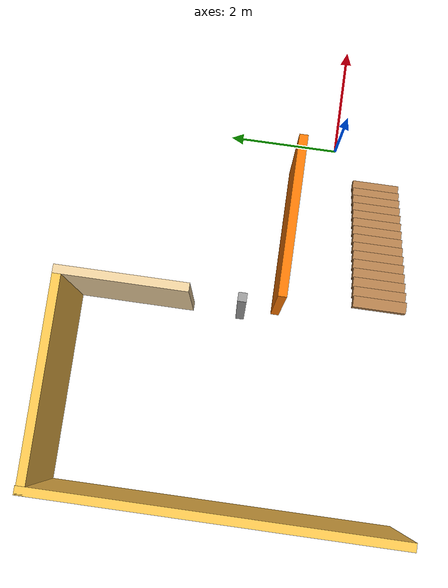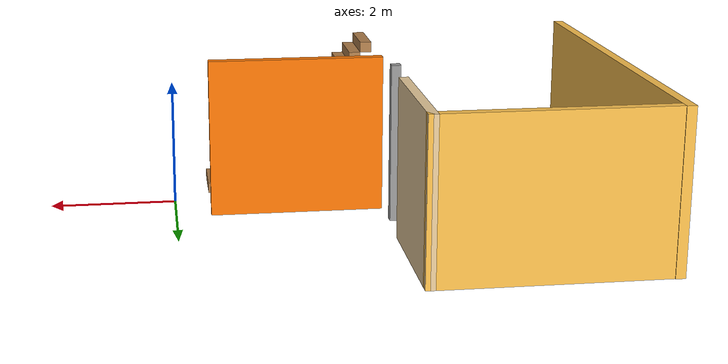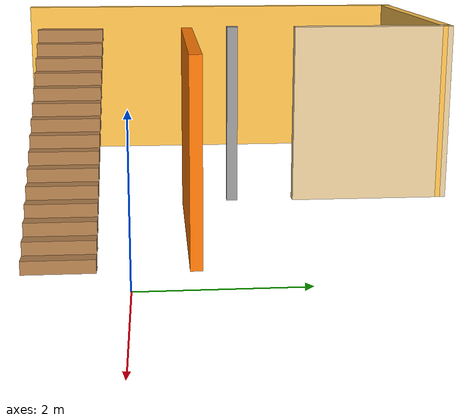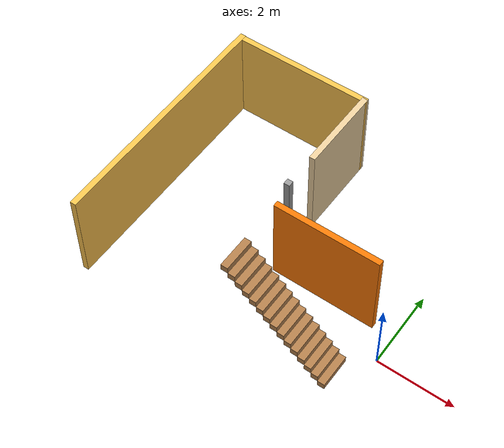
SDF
<sdf version="1.6">
 <model name="my_world">
  <link name="Stairs_3">
   <visual name="Stairs_3_Visual_0">
    <pose>-0.655687 -0.838968 0.083333 0 0 -1.5708</pose>
    <geometry><box><size>0.863121 0.182638 0.166667</size></box></geometry>
    <material>
     <script><uri>file://media/materials/scripts/gazebo.material</uri><name>Gazebo/Wood</name></script>
     <ambient>1 1 1 1</ambient>
     <diffuse>1 1 1 1</diffuse>
     <specular>0.2 0.2 0.2 1</specular>
     <emissive>0 0 0 1</emissive>
     <shader type="pixel"/>
    </material>
    <meta><layer>0</layer></meta>
   </visual>
   <visual name="Stairs_3_Visual_1">
    <pose>-0.838325 -0.838968 0.25 0 0 -1.5708</pose>
    <geometry><box><size>0.863121 0.182638 0.166667</size></box></geometry>
    <material>
     <script><uri>file://media/materials/scripts/gazebo.material</uri><name>Gazebo/Wood</name></script>
     <ambient>1 1 1 1</ambient>
     <diffuse>1 1 1 1</diffuse>
     <specular>0.2 0.2 0.2 1</specular>
     <emissive>0 0 0 1</emissive>
     <shader type="pixel"/>
    </material>
    <meta><layer>0</layer></meta>
   </visual>
   <visual name="Stairs_3_Visual_2">
    <pose>-1.02096 -0.838968 0.416667 0 0 -1.5708</pose>
    <geometry><box><size>0.863121 0.182638 0.166667</size></box></geometry>
    <material>
     <script><uri>file://media/materials/scripts/gazebo.material</uri><name>Gazebo/Wood</name></script>
     <ambient>1 1 1 1</ambient>
     <diffuse>1 1 1 1</diffuse>
     <specular>0.2 0.2 0.2 1</specular>
     <emissive>0 0 0 1</emissive>
     <shader type="pixel"/>
    </material>
    <meta><layer>0</layer></meta>
   </visual>
   <visual name="Stairs_3_Visual_8">
    <pose>-2.11679 -0.838967 1.41667 0 0 -1.5708</pose>
    <geometry><box><size>0.863121 0.182638 0.166667</size></box></geometry>
    <material>
     <script><uri>file://media/materials/scripts/gazebo.material</uri><name>Gazebo/Wood</name></script>
     <ambient>1 1 1 1</ambient>
     <diffuse>1 1 1 1</diffuse>
     <specular>0.2 0.2 0.2 1</specular>
     <emissive>0 0 0 1</emissive>
     <shader type="pixel"/>
    </material>
    <meta><layer>0</layer></meta>
   </visual>
   <visual name="Stairs_3_Visual_3">
    <pose>-1.2036 -0.838968 0.583333 0 0 -1.5708</pose>
    <geometry><box><size>0.863121 0.182638 0.166667</size></box></geometry>
    <material>
     <script><uri>file://media/materials/scripts/gazebo.material</uri><name>Gazebo/Wood</name></script>
     <ambient>1 1 1 1</ambient>
     <diffuse>1 1 1 1</diffuse>
     <specular>0.2 0.2 0.2 1</specular>
     <emissive>0 0 0 1</emissive>
     <shader type="pixel"/>
    </material>
    <meta><layer>0</layer></meta>
   </visual>
   <visual name="Stairs_3_Visual_4">
    <pose>-1.38624 -0.838968 0.75 0 0 -1.5708</pose>
    <geometry><box><size>0.863121 0.182638 0.166667</size></box></geometry>
    <material>
     <script><uri>file://media/materials/scripts/gazebo.material</uri><name>Gazebo/Wood</name></script>
     <ambient>1 1 1 1</ambient>
     <diffuse>1 1 1 1</diffuse>
     <specular>0.2 0.2 0.2 1</specular>
     <emissive>0 0 0 1</emissive>
     <shader type="pixel"/>
    </material>
    <meta><layer>0</layer></meta>
   </visual>
   <visual name="Stairs_3_Visual_5">
    <pose>-1.56888 -0.838968 0.916667 0 0 -1.5708</pose>
    <geometry><box><size>0.863121 0.182638 0.166667</size></box></geometry>
    <material>
     <script><uri>file://media/materials/scripts/gazebo.material</uri><name>Gazebo/Wood</name></script>
     <ambient>1 1 1 1</ambient>
     <diffuse>1 1 1 1</diffuse>
     <specular>0.2 0.2 0.2 1</specular>
     <emissive>0 0 0 1</emissive>
     <shader type="pixel"/>
    </material>
    <meta><layer>0</layer></meta>
   </visual>
   <visual name="Stairs_3_Visual_6">
    <pose>-1.75151 -0.838968 1.08333 0 0 -1.5708</pose>
    <geometry><box><size>0.863121 0.182638 0.166667</size></box></geometry>
    <material>
     <script><uri>file://media/materials/scripts/gazebo.material</uri><name>Gazebo/Wood</name></script>
     <ambient>1 1 1 1</ambient>
     <diffuse>1 1 1 1</diffuse>
     <specular>0.2 0.2 0.2 1</specular>
     <emissive>0 0 0 1</emissive>
     <shader type="pixel"/>
    </material>
    <meta><layer>0</layer></meta>
   </visual>
   <visual name="Stairs_3_Visual_7">
    <pose>-1.93415 -0.838968 1.25 0 0 -1.5708</pose>
    <geometry><box><size>0.863121 0.182638 0.166667</size></box></geometry>
    <material>
     <script><uri>file://media/materials/scripts/gazebo.material</uri><name>Gazebo/Wood</name></script>
     <ambient>1 1 1 1</ambient>
     <diffuse>1 1 1 1</diffuse>
     <specular>0.2 0.2 0.2 1</specular>
     <emissive>0 0 0 1</emissive>
     <shader type="pixel"/>
    </material>
    <meta><layer>0</layer></meta>
   </visual>
   <visual name="Stairs_3_Visual_9">
    <pose>-2.29942 -0.838967 1.58333 0 0 -1.5708</pose>
    <geometry><box><size>0.863121 0.182638 0.166667</size></box></geometry>
    <material>
     <script><uri>file://media/materials/scripts/gazebo.material</uri><name>Gazebo/Wood</name></script>
     <ambient>1 1 1 1</ambient>
     <diffuse>1 1 1 1</diffuse>
     <specular>0.2 0.2 0.2 1</specular>
     <emissive>0 0 0 1</emissive>
     <shader type="pixel"/>
    </material>
    <meta><layer>0</layer></meta>
   </visual>
   <visual name="Stairs_3_Visual_10">
    <pose>-2.48206 -0.838967 1.75 0 0 -1.5708</pose>
    <geometry><box><size>0.863121 0.182638 0.166667</size></box></geometry>
    <material>
     <script><uri>file://media/materials/scripts/gazebo.material</uri><name>Gazebo/Wood</name></script>
     <ambient>1 1 1 1</ambient>
     <diffuse>1 1 1 1</diffuse>
     <specular>0.2 0.2 0.2 1</specular>
     <emissive>0 0 0 1</emissive>
     <shader type="pixel"/>
    </material>
    <meta><layer>0</layer></meta>
   </visual>
   <visual name="Stairs_3_Visual_11">
    <pose>-2.6647 -0.838967 1.91667 0 0 -1.5708</pose>
    <geometry><box><size>0.863121 0.182638 0.166667</size></box></geometry>
    <material>
     <script><uri>file://media/materials/scripts/gazebo.material</uri><name>Gazebo/Wood</name></script>
     <ambient>1 1 1 1</ambient>
     <diffuse>1 1 1 1</diffuse>
     <specular>0.2 0.2 0.2 1</specular>
     <emissive>0 0 0 1</emissive>
     <shader type="pixel"/>
    </material>
    <meta><layer>0</layer></meta>
   </visual>
   <visual name="Stairs_3_Visual_12">
    <pose>-2.84734 -0.838967 2.08333 0 0 -1.5708</pose>
    <geometry><box><size>0.863121 0.182638 0.166667</size></box></geometry>
    <material>
     <script><uri>file://media/materials/scripts/gazebo.material</uri><name>Gazebo/Wood</name></script>
     <ambient>1 1 1 1</ambient>
     <diffuse>1 1 1 1</diffuse>
     <specular>0.2 0.2 0.2 1</specular>
     <emissive>0 0 0 1</emissive>
     <shader type="pixel"/>
    </material>
    <meta><layer>0</layer></meta>
   </visual>
   <visual name="Stairs_3_Visual_13">
    <pose>-3.02997 -0.838967 2.25 0 0 -1.5708</pose>
    <geometry><box><size>0.863121 0.182638 0.166667</size></box></geometry>
    <material>
     <script><uri>file://media/materials/scripts/gazebo.material</uri><name>Gazebo/Wood</name></script>
     <ambient>1 1 1 1</ambient>
     <diffuse>1 1 1 1</diffuse>
     <specular>0.2 0.2 0.2 1</specular>
     <emissive>0 0 0 1</emissive>
     <shader type="pixel"/>
    </material>
    <meta><layer>0</layer></meta>
   </visual>
   <visual name="Stairs_3_Visual_14">
    <pose>-3.21261 -0.838967 2.41667 0 0 -1.5708</pose>
    <geometry><box><size>0.863121 0.182638 0.166667</size></box></geometry>
    <material>
     <script><uri>file://media/materials/scripts/gazebo.material</uri><name>Gazebo/Wood</name></script>
     <ambient>1 1 1 1</ambient>
     <diffuse>1 1 1 1</diffuse>
     <specular>0.2 0.2 0.2 1</specular>
     <emissive>0 0 0 1</emissive>
     <shader type="pixel"/>
    </material>
    <meta><layer>0</layer></meta>
   </visual>
   <collision name="Stairs_3_Collision_13">
    <pose>-3.02997 -0.838967 2.25 0 0 -1.5708</pose>
    <geometry><box><size>0.863121 0.182638 0.166667</size></box></geometry>
    <surface>
     <friction>
      <ode><mu>1</mu><mu2>1</mu2><fdir1>0 0 0</fdir1><slip1>0</slip1><slip2>0</slip2></ode>
      <torsional>
       <coefficient>1</coefficient>
       <patch_radius>0</patch_radius>
       <surface_radius>0</surface_radius>
       <use_patch_radius>1</use_patch_radius>
       <ode><slip>0</slip></ode>
      </torsional>
     </friction>
     <bounce><restitution_coefficient>0</restitution_coefficient><threshold>1e+06</threshold></bounce>
     <contact>
      <collide_without_contact>0</collide_without_contact>
      <collide_without_contact_bitmask>1</collide_without_contact_bitmask>
      <collide_bitmask>1</collide_bitmask>
      <ode>
       <soft_cfm>0</soft_cfm>
       <soft_erp>0.2</soft_erp>
       <kp>1e+13</kp>
       <kd>1</kd>
       <max_vel>0.01</max_vel>
       <min_depth>0</min_depth>
      </ode>
      <bullet>
       <split_impulse>1</split_impulse>
       <split_impulse_penetration_threshold>-0.01</split_impulse_penetration_threshold>
       <soft_cfm>0</soft_cfm>
       <soft_erp>0.2</soft_erp>
       <kp>1e+13</kp>
       <kd>1</kd>
      </bullet>
     </contact>
    </surface>
   </collision>
   <collision name="Stairs_3_Collision_2">
    <pose>-1.02096 -0.838968 0.416667 0 0 -1.5708</pose>
    <geometry><box><size>0.863121 0.182638 0.166667</size></box></geometry>
    <surface>
     <friction>
      <ode><mu>1</mu><mu2>1</mu2><fdir1>0 0 0</fdir1><slip1>0</slip1><slip2>0</slip2></ode>
      <torsional>
       <coefficient>1</coefficient>
       <patch_radius>0</patch_radius>
       <surface_radius>0</surface_radius>
       <use_patch_radius>1</use_patch_radius>
       <ode><slip>0</slip></ode>
      </torsional>
     </friction>
     <bounce><restitution_coefficient>0</restitution_coefficient><threshold>1e+06</threshold></bounce>
     <contact>
      <collide_without_contact>0</collide_without_contact>
      <collide_without_contact_bitmask>1</collide_without_contact_bitmask>
      <collide_bitmask>1</collide_bitmask>
      <ode>
       <soft_cfm>0</soft_cfm>
       <soft_erp>0.2</soft_erp>
       <kp>1e+13</kp>
       <kd>1</kd>
       <max_vel>0.01</max_vel>
       <min_depth>0</min_depth>
      </ode>
      <bullet>
       <split_impulse>1</split_impulse>
       <split_impulse_penetration_threshold>-0.01</split_impulse_penetration_threshold>
       <soft_cfm>0</soft_cfm>
       <soft_erp>0.2</soft_erp>
       <kp>1e+13</kp>
       <kd>1</kd>
      </bullet>
     </contact>
    </surface>
   </collision>
   <collision name="Stairs_3_Collision_0">
    <pose>-0.655687 -0.838968 0.083333 0 0 -1.5708</pose>
    <geometry><box><size>0.863121 0.182638 0.166667</size></box></geometry>
    <surface>
     <friction>
      <ode><mu>1</mu><mu2>1</mu2><fdir1>0 0 0</fdir1><slip1>0</slip1><slip2>0</slip2></ode>
      <torsional>
       <coefficient>1</coefficient>
       <patch_radius>0</patch_radius>
       <surface_radius>0</surface_radius>
       <use_patch_radius>1</use_patch_radius>
       <ode><slip>0</slip></ode>
      </torsional>
     </friction>
     <bounce><restitution_coefficient>0</restitution_coefficient><threshold>1e+06</threshold></bounce>
     <contact>
      <collide_without_contact>0</collide_without_contact>
      <collide_without_contact_bitmask>1</collide_without_contact_bitmask>
      <collide_bitmask>1</collide_bitmask>
      <ode>
       <soft_cfm>0</soft_cfm>
       <soft_erp>0.2</soft_erp>
       <kp>1e+13</kp>
       <kd>1</kd>
       <max_vel>0.01</max_vel>
       <min_depth>0</min_depth>
      </ode>
      <bullet>
       <split_impulse>1</split_impulse>
       <split_impulse_penetration_threshold>-0.01</split_impulse_penetration_threshold>
       <soft_cfm>0</soft_cfm>
       <soft_erp>0.2</soft_erp>
       <kp>1e+13</kp>
       <kd>1</kd>
      </bullet>
     </contact>
    </surface>
   </collision>
   <collision name="Stairs_3_Collision_1">
    <pose>-0.838325 -0.838968 0.25 0 0 -1.5708</pose>
    <geometry><box><size>0.863121 0.182638 0.166667</size></box></geometry>
    <surface>
     <friction>
      <ode><mu>1</mu><mu2>1</mu2><fdir1>0 0 0</fdir1><slip1>0</slip1><slip2>0</slip2></ode>
      <torsional>
       <coefficient>1</coefficient>
       <patch_radius>0</patch_radius>
       <surface_radius>0</surface_radius>
       <use_patch_radius>1</use_patch_radius>
       <ode><slip>0</slip></ode>
      </torsional>
     </friction>
     <bounce><restitution_coefficient>0</restitution_coefficient><threshold>1e+06</threshold></bounce>
     <contact>
      <collide_without_contact>0</collide_without_contact>
      <collide_without_contact_bitmask>1</collide_without_contact_bitmask>
      <collide_bitmask>1</collide_bitmask>
      <ode>
       <soft_cfm>0</soft_cfm>
       <soft_erp>0.2</soft_erp>
       <kp>1e+13</kp>
       <kd>1</kd>
       <max_vel>0.01</max_vel>
       <min_depth>0</min_depth>
      </ode>
      <bullet>
       <split_impulse>1</split_impulse>
       <split_impulse_penetration_threshold>-0.01</split_impulse_penetration_threshold>
       <soft_cfm>0</soft_cfm>
       <soft_erp>0.2</soft_erp>
       <kp>1e+13</kp>
       <kd>1</kd>
      </bullet>
     </contact>
    </surface>
   </collision>
   <collision name="Stairs_3_Collision_3">
    <pose>-1.2036 -0.838968 0.583333 0 0 -1.5708</pose>
    <geometry><box><size>0.863121 0.182638 0.166667</size></box></geometry>
    <surface>
     <friction>
      <ode><mu>1</mu><mu2>1</mu2><fdir1>0 0 0</fdir1><slip1>0</slip1><slip2>0</slip2></ode>
      <torsional>
       <coefficient>1</coefficient>
       <patch_radius>0</patch_radius>
       <surface_radius>0</surface_radius>
       <use_patch_radius>1</use_patch_radius>
       <ode><slip>0</slip></ode>
      </torsional>
     </friction>
     <bounce><restitution_coefficient>0</restitution_coefficient><threshold>1e+06</threshold></bounce>
     <contact>
      <collide_without_contact>0</collide_without_contact>
      <collide_without_contact_bitmask>1</collide_without_contact_bitmask>
      <collide_bitmask>1</collide_bitmask>
      <ode>
       <soft_cfm>0</soft_cfm>
       <soft_erp>0.2</soft_erp>
       <kp>1e+13</kp>
       <kd>1</kd>
       <max_vel>0.01</max_vel>
       <min_depth>0</min_depth>
      </ode>
      <bullet>
       <split_impulse>1</split_impulse>
       <split_impulse_penetration_threshold>-0.01</split_impulse_penetration_threshold>
       <soft_cfm>0</soft_cfm>
       <soft_erp>0.2</soft_erp>
       <kp>1e+13</kp>
       <kd>1</kd>
      </bullet>
     </contact>
    </surface>
   </collision>
   <collision name="Stairs_3_Collision_4">
    <pose>-1.38624 -0.838968 0.75 0 0 -1.5708</pose>
    <geometry><box><size>0.863121 0.182638 0.166667</size></box></geometry>
    <surface>
     <friction>
      <ode><mu>1</mu><mu2>1</mu2><fdir1>0 0 0</fdir1><slip1>0</slip1><slip2>0</slip2></ode>
      <torsional>
       <coefficient>1</coefficient>
       <patch_radius>0</patch_radius>
       <surface_radius>0</surface_radius>
       <use_patch_radius>1</use_patch_radius>
       <ode><slip>0</slip></ode>
      </torsional>
     </friction>
     <bounce><restitution_coefficient>0</restitution_coefficient><threshold>1e+06</threshold></bounce>
     <contact>
      <collide_without_contact>0</collide_without_contact>
      <collide_without_contact_bitmask>1</collide_without_contact_bitmask>
      <collide_bitmask>1</collide_bitmask>
      <ode>
       <soft_cfm>0</soft_cfm>
       <soft_erp>0.2</soft_erp>
       <kp>1e+13</kp>
       <kd>1</kd>
       <max_vel>0.01</max_vel>
       <min_depth>0</min_depth>
      </ode>
      <bullet>
       <split_impulse>1</split_impulse>
       <split_impulse_penetration_threshold>-0.01</split_impulse_penetration_threshold>
       <soft_cfm>0</soft_cfm>
       <soft_erp>0.2</soft_erp>
       <kp>1e+13</kp>
       <kd>1</kd>
      </bullet>
     </contact>
    </surface>
   </collision>
   <collision name="Stairs_3_Collision_5">
    <pose>-1.56888 -0.838968 0.916667 0 0 -1.5708</pose>
    <geometry><box><size>0.863121 0.182638 0.166667</size></box></geometry>
    <surface>
     <friction>
      <ode><mu>1</mu><mu2>1</mu2><fdir1>0 0 0</fdir1><slip1>0</slip1><slip2>0</slip2></ode>
      <torsional>
       <coefficient>1</coefficient>
       <patch_radius>0</patch_radius>
       <surface_radius>0</surface_radius>
       <use_patch_radius>1</use_patch_radius>
       <ode><slip>0</slip></ode>
      </torsional>
     </friction>
     <bounce><restitution_coefficient>0</restitution_coefficient><threshold>1e+06</threshold></bounce>
     <contact>
      <collide_without_contact>0</collide_without_contact>
      <collide_without_contact_bitmask>1</collide_without_contact_bitmask>
      <collide_bitmask>1</collide_bitmask>
      <ode>
       <soft_cfm>0</soft_cfm>
       <soft_erp>0.2</soft_erp>
       <kp>1e+13</kp>
       <kd>1</kd>
       <max_vel>0.01</max_vel>
       <min_depth>0</min_depth>
      </ode>
      <bullet>
       <split_impulse>1</split_impulse>
       <split_impulse_penetration_threshold>-0.01</split_impulse_penetration_threshold>
       <soft_cfm>0</soft_cfm>
       <soft_erp>0.2</soft_erp>
       <kp>1e+13</kp>
       <kd>1</kd>
      </bullet>
     </contact>
    </surface>
   </collision>
   <collision name="Stairs_3_Collision_7">
    <pose>-1.93415 -0.838968 1.25 0 0 -1.5708</pose>
    <geometry><box><size>0.863121 0.182638 0.166667</size></box></geometry>
    <surface>
     <friction>
      <ode><mu>1</mu><mu2>1</mu2><fdir1>0 0 0</fdir1><slip1>0</slip1><slip2>0</slip2></ode>
      <torsional>
       <coefficient>1</coefficient>
       <patch_radius>0</patch_radius>
       <surface_radius>0</surface_radius>
       <use_patch_radius>1</use_patch_radius>
       <ode><slip>0</slip></ode>
      </torsional>
     </friction>
     <bounce><restitution_coefficient>0</restitution_coefficient><threshold>1e+06</threshold></bounce>
     <contact>
      <collide_without_contact>0</collide_without_contact>
      <collide_without_contact_bitmask>1</collide_without_contact_bitmask>
      <collide_bitmask>1</collide_bitmask>
      <ode>
       <soft_cfm>0</soft_cfm>
       <soft_erp>0.2</soft_erp>
       <kp>1e+13</kp>
       <kd>1</kd>
       <max_vel>0.01</max_vel>
       <min_depth>0</min_depth>
      </ode>
      <bullet>
       <split_impulse>1</split_impulse>
       <split_impulse_penetration_threshold>-0.01</split_impulse_penetration_threshold>
       <soft_cfm>0</soft_cfm>
       <soft_erp>0.2</soft_erp>
       <kp>1e+13</kp>
       <kd>1</kd>
      </bullet>
     </contact>
    </surface>
   </collision>
   <collision name="Stairs_3_Collision_6">
    <pose>-1.75151 -0.838968 1.08333 0 0 -1.5708</pose>
    <geometry><box><size>0.863121 0.182638 0.166667</size></box></geometry>
    <surface>
     <friction>
      <ode><mu>1</mu><mu2>1</mu2><fdir1>0 0 0</fdir1><slip1>0</slip1><slip2>0</slip2></ode>
      <torsional>
       <coefficient>1</coefficient>
       <patch_radius>0</patch_radius>
       <surface_radius>0</surface_radius>
       <use_patch_radius>1</use_patch_radius>
       <ode><slip>0</slip></ode>
      </torsional>
     </friction>
     <bounce><restitution_coefficient>0</restitution_coefficient><threshold>1e+06</threshold></bounce>
     <contact>
      <collide_without_contact>0</collide_without_contact>
      <collide_without_contact_bitmask>1</collide_without_contact_bitmask>
      <collide_bitmask>1</collide_bitmask>
      <ode>
       <soft_cfm>0</soft_cfm>
       <soft_erp>0.2</soft_erp>
       <kp>1e+13</kp>
       <kd>1</kd>
       <max_vel>0.01</max_vel>
       <min_depth>0</min_depth>
      </ode>
      <bullet>
       <split_impulse>1</split_impulse>
       <split_impulse_penetration_threshold>-0.01</split_impulse_penetration_threshold>
       <soft_cfm>0</soft_cfm>
       <soft_erp>0.2</soft_erp>
       <kp>1e+13</kp>
       <kd>1</kd>
      </bullet>
     </contact>
    </surface>
   </collision>
   <collision name="Stairs_3_Collision_8">
    <pose>-2.11679 -0.838967 1.41667 0 0 -1.5708</pose>
    <geometry><box><size>0.863121 0.182638 0.166667</size></box></geometry>
    <surface>
     <friction>
      <ode><mu>1</mu><mu2>1</mu2><fdir1>0 0 0</fdir1><slip1>0</slip1><slip2>0</slip2></ode>
      <torsional>
       <coefficient>1</coefficient>
       <patch_radius>0</patch_radius>
       <surface_radius>0</surface_radius>
       <use_patch_radius>1</use_patch_radius>
       <ode><slip>0</slip></ode>
      </torsional>
     </friction>
     <bounce><restitution_coefficient>0</restitution_coefficient><threshold>1e+06</threshold></bounce>
     <contact>
      <collide_without_contact>0</collide_without_contact>
      <collide_without_contact_bitmask>1</collide_without_contact_bitmask>
      <collide_bitmask>1</collide_bitmask>
      <ode>
       <soft_cfm>0</soft_cfm>
       <soft_erp>0.2</soft_erp>
       <kp>1e+13</kp>
       <kd>1</kd>
       <max_vel>0.01</max_vel>
       <min_depth>0</min_depth>
      </ode>
      <bullet>
       <split_impulse>1</split_impulse>
       <split_impulse_penetration_threshold>-0.01</split_impulse_penetration_threshold>
       <soft_cfm>0</soft_cfm>
       <soft_erp>0.2</soft_erp>
       <kp>1e+13</kp>
       <kd>1</kd>
      </bullet>
     </contact>
    </surface>
   </collision>
   <collision name="Stairs_3_Collision_9">
    <pose>-2.29942 -0.838967 1.58333 0 0 -1.5708</pose>
    <geometry><box><size>0.863121 0.182638 0.166667</size></box></geometry>
    <surface>
     <friction>
      <ode><mu>1</mu><mu2>1</mu2><fdir1>0 0 0</fdir1><slip1>0</slip1><slip2>0</slip2></ode>
      <torsional>
       <coefficient>1</coefficient>
       <patch_radius>0</patch_radius>
       <surface_radius>0</surface_radius>
       <use_patch_radius>1</use_patch_radius>
       <ode><slip>0</slip></ode>
      </torsional>
     </friction>
     <bounce><restitution_coefficient>0</restitution_coefficient><threshold>1e+06</threshold></bounce>
     <contact>
      <collide_without_contact>0</collide_without_contact>
      <collide_without_contact_bitmask>1</collide_without_contact_bitmask>
      <collide_bitmask>1</collide_bitmask>
      <ode>
       <soft_cfm>0</soft_cfm>
       <soft_erp>0.2</soft_erp>
       <kp>1e+13</kp>
       <kd>1</kd>
       <max_vel>0.01</max_vel>
       <min_depth>0</min_depth>
      </ode>
      <bullet>
       <split_impulse>1</split_impulse>
       <split_impulse_penetration_threshold>-0.01</split_impulse_penetration_threshold>
       <soft_cfm>0</soft_cfm>
       <soft_erp>0.2</soft_erp>
       <kp>1e+13</kp>
       <kd>1</kd>
      </bullet>
     </contact>
    </surface>
   </collision>
   <collision name="Stairs_3_Collision_11">
    <pose>-2.6647 -0.838967 1.91667 0 0 -1.5708</pose>
    <geometry><box><size>0.863121 0.182638 0.166667</size></box></geometry>
    <surface>
     <friction>
      <ode><mu>1</mu><mu2>1</mu2><fdir1>0 0 0</fdir1><slip1>0</slip1><slip2>0</slip2></ode>
      <torsional>
       <coefficient>1</coefficient>
       <patch_radius>0</patch_radius>
       <surface_radius>0</surface_radius>
       <use_patch_radius>1</use_patch_radius>
       <ode><slip>0</slip></ode>
      </torsional>
     </friction>
     <bounce><restitution_coefficient>0</restitution_coefficient><threshold>1e+06</threshold></bounce>
     <contact>
      <collide_without_contact>0</collide_without_contact>
      <collide_without_contact_bitmask>1</collide_without_contact_bitmask>
      <collide_bitmask>1</collide_bitmask>
      <ode>
       <soft_cfm>0</soft_cfm>
       <soft_erp>0.2</soft_erp>
       <kp>1e+13</kp>
       <kd>1</kd>
       <max_vel>0.01</max_vel>
       <min_depth>0</min_depth>
      </ode>
      <bullet>
       <split_impulse>1</split_impulse>
       <split_impulse_penetration_threshold>-0.01</split_impulse_penetration_threshold>
       <soft_cfm>0</soft_cfm>
       <soft_erp>0.2</soft_erp>
       <kp>1e+13</kp>
       <kd>1</kd>
      </bullet>
     </contact>
    </surface>
   </collision>
   <collision name="Stairs_3_Collision_12">
    <pose>-2.84734 -0.838967 2.08333 0 0 -1.5708</pose>
    <geometry><box><size>0.863121 0.182638 0.166667</size></box></geometry>
    <surface>
     <friction>
      <ode><mu>1</mu><mu2>1</mu2><fdir1>0 0 0</fdir1><slip1>0</slip1><slip2>0</slip2></ode>
      <torsional>
       <coefficient>1</coefficient>
       <patch_radius>0</patch_radius>
       <surface_radius>0</surface_radius>
       <use_patch_radius>1</use_patch_radius>
       <ode><slip>0</slip></ode>
      </torsional>
     </friction>
     <bounce><restitution_coefficient>0</restitution_coefficient><threshold>1e+06</threshold></bounce>
     <contact>
      <collide_without_contact>0</collide_without_contact>
      <collide_without_contact_bitmask>1</collide_without_contact_bitmask>
      <collide_bitmask>1</collide_bitmask>
      <ode>
       <soft_cfm>0</soft_cfm>
       <soft_erp>0.2</soft_erp>
       <kp>1e+13</kp>
       <kd>1</kd>
       <max_vel>0.01</max_vel>
       <min_depth>0</min_depth>
      </ode>
      <bullet>
       <split_impulse>1</split_impulse>
       <split_impulse_penetration_threshold>-0.01</split_impulse_penetration_threshold>
       <soft_cfm>0</soft_cfm>
       <soft_erp>0.2</soft_erp>
       <kp>1e+13</kp>
       <kd>1</kd>
      </bullet>
     </contact>
    </surface>
   </collision>
   <collision name="Stairs_3_Collision_10">
    <pose>-2.48206 -0.838967 1.75 0 0 -1.5708</pose>
    <geometry><box><size>0.863121 0.182638 0.166667</size></box></geometry>
    <surface>
     <friction>
      <ode><mu>1</mu><mu2>1</mu2><fdir1>0 0 0</fdir1><slip1>0</slip1><slip2>0</slip2></ode>
      <torsional>
       <coefficient>1</coefficient>
       <patch_radius>0</patch_radius>
       <surface_radius>0</surface_radius>
       <use_patch_radius>1</use_patch_radius>
       <ode><slip>0</slip></ode>
      </torsional>
     </friction>
     <bounce><restitution_coefficient>0</restitution_coefficient><threshold>1e+06</threshold></bounce>
     <contact>
      <collide_without_contact>0</collide_without_contact>
      <collide_without_contact_bitmask>1</collide_without_contact_bitmask>
      <collide_bitmask>1</collide_bitmask>
      <ode>
       <soft_cfm>0</soft_cfm>
       <soft_erp>0.2</soft_erp>
       <kp>1e+13</kp>
       <kd>1</kd>
       <max_vel>0.01</max_vel>
       <min_depth>0</min_depth>
      </ode>
      <bullet>
       <split_impulse>1</split_impulse>
       <split_impulse_penetration_threshold>-0.01</split_impulse_penetration_threshold>
       <soft_cfm>0</soft_cfm>
       <soft_erp>0.2</soft_erp>
       <kp>1e+13</kp>
       <kd>1</kd>
      </bullet>
     </contact>
    </surface>
   </collision>
   <collision name="Stairs_3_Collision_14">
    <pose>-3.21261 -0.838967 2.41667 0 0 -1.5708</pose>
    <geometry><box><size>0.863121 0.182638 0.166667</size></box></geometry>
    <surface>
     <friction>
      <ode><mu>1</mu><mu2>1</mu2><fdir1>0 0 0</fdir1><slip1>0</slip1><slip2>0</slip2></ode>
      <torsional>
       <coefficient>1</coefficient>
       <patch_radius>0</patch_radius>
       <surface_radius>0</surface_radius>
       <use_patch_radius>1</use_patch_radius>
       <ode><slip>0</slip></ode>
      </torsional>
     </friction>
     <bounce><restitution_coefficient>0</restitution_coefficient><threshold>1e+06</threshold></bounce>
     <contact>
      <collide_without_contact>0</collide_without_contact>
      <collide_without_contact_bitmask>1</collide_without_contact_bitmask>
      <collide_bitmask>1</collide_bitmask>
      <ode>
       <soft_cfm>0</soft_cfm>
       <soft_erp>0.2</soft_erp>
       <kp>1e+13</kp>
       <kd>1</kd>
       <max_vel>0.01</max_vel>
       <min_depth>0</min_depth>
      </ode>
      <bullet>
       <split_impulse>1</split_impulse>
       <split_impulse_penetration_threshold>-0.01</split_impulse_penetration_threshold>
       <soft_cfm>0</soft_cfm>
       <soft_erp>0.2</soft_erp>
       <kp>1e+13</kp>
       <kd>1</kd>
      </bullet>
     </contact>
    </surface>
   </collision>
  </link>
  <link name="Wall_42">
   <pose>-1.9262 0.735138 0 0 -0 3.14159</pose>
   <visual name="Wall_42_Visual">
    <pose>0 0 1.25 0 -0 0</pose>
    <geometry><box><size>2.75 0.15 2.5</size></box></geometry>
    <material>
     <script><uri>file://media/materials/scripts/gazebo.material</uri><name>Gazebo/Grey</name></script>
     <ambient>0.996078 0.47451 0.0196078 1</ambient>
     <diffuse>0.7 0.7 0.7 1</diffuse>
     <specular>0.01 0.01 0.01 1</specular>
     <emissive>0 0 0 1</emissive>
     <shader type="pixel"/>
    </material>
    <meta><layer>0</layer></meta>
   </visual>
   <collision name="Wall_42_Collision">
    <pose>0 0 1.25 0 -0 0</pose>
    <geometry><box><size>2.75 0.15 2.5</size></box></geometry>
    <surface>
     <friction>
      <ode><mu>1</mu><mu2>1</mu2><fdir1>0 0 0</fdir1><slip1>0</slip1><slip2>0</slip2></ode>
      <torsional>
       <coefficient>1</coefficient>
       <patch_radius>0</patch_radius>
       <surface_radius>0</surface_radius>
       <use_patch_radius>1</use_patch_radius>
       <ode><slip>0</slip></ode>
      </torsional>
     </friction>
     <bounce><restitution_coefficient>0</restitution_coefficient><threshold>1e+06</threshold></bounce>
     <contact>
      <collide_without_contact>0</collide_without_contact>
      <collide_without_contact_bitmask>1</collide_without_contact_bitmask>
      <collide_bitmask>1</collide_bitmask>
      <ode>
       <soft_cfm>0</soft_cfm>
       <soft_erp>0.2</soft_erp>
       <kp>1e+13</kp>
       <kd>1</kd>
       <max_vel>0.01</max_vel>
       <min_depth>0</min_depth>
      </ode>
      <bullet>
       <split_impulse>1</split_impulse>
       <split_impulse_penetration_threshold>-0.01</split_impulse_penetration_threshold>
       <soft_cfm>0</soft_cfm>
       <soft_erp>0.2</soft_erp>
       <kp>1e+13</kp>
       <kd>1</kd>
      </bullet>
     </contact>
    </surface>
   </collision>
  </link>
  <link name="Wall_5">
   <pose>-3.39998 1.375 0 0 -0 0</pose>
   <visual name="Wall_5_Visual">
    <pose>0 0 1.25 0 -0 0</pose>
    <geometry><box><size>0.15 0.15 2.5</size></box></geometry>
    <material>
     <script><uri>file://media/materials/scripts/gazebo.material</uri><name>Gazebo/Grey</name></script>
     <ambient>1 1 1 1</ambient>
     <diffuse>0.7 0.7 0.7 1</diffuse>
     <specular>0.01 0.01 0.01 1</specular>
     <emissive>0 0 0 1</emissive>
     <shader type="pixel"/>
    </material>
    <meta><layer>0</layer></meta>
   </visual>
   <collision name="Wall_5_Collision">
    <pose>0 0 1.25 0 -0 0</pose>
    <geometry><box><size>0.15 0.15 2.5</size></box></geometry>
    <surface>
     <friction>
      <ode><mu>1</mu><mu2>1</mu2><fdir1>0 0 0</fdir1><slip1>0</slip1><slip2>0</slip2></ode>
      <torsional>
       <coefficient>1</coefficient>
       <patch_radius>0</patch_radius>
       <surface_radius>0</surface_radius>
       <use_patch_radius>1</use_patch_radius>
       <ode><slip>0</slip></ode>
      </torsional>
     </friction>
     <bounce><restitution_coefficient>0</restitution_coefficient><threshold>1e+06</threshold></bounce>
     <contact>
      <collide_without_contact>0</collide_without_contact>
      <collide_without_contact_bitmask>1</collide_without_contact_bitmask>
      <collide_bitmask>1</collide_bitmask>
      <ode>
       <soft_cfm>0</soft_cfm>
       <soft_erp>0.2</soft_erp>
       <kp>1e+13</kp>
       <kd>1</kd>
       <max_vel>0.01</max_vel>
       <min_depth>0</min_depth>
      </ode>
      <bullet>
       <split_impulse>1</split_impulse>
       <split_impulse_penetration_threshold>-0.01</split_impulse_penetration_threshold>
       <soft_cfm>0</soft_cfm>
       <soft_erp>0.2</soft_erp>
       <kp>1e+13</kp>
       <kd>1</kd>
      </bullet>
     </contact>
    </surface>
   </collision>
  </link>
  <link name="Wall_51">
   <pose>-3.36377 3.3754 0 0 -0 1.5708</pose>
   <visual name="Wall_51_Visual">
    <pose>0 0 1.25 0 -0 0</pose>
    <geometry><box><size>2.25 0.15 2.5</size></box></geometry>
    <material>
     <script><uri>file://media/materials/scripts/gazebo.material</uri><name>Gazebo/Grey</name></script>
     <ambient>0.921569 0.807843 0.615686 1</ambient>
     <diffuse>0.7 0.7 0.7 1</diffuse>
     <specular>0.01 0.01 0.01 1</specular>
     <emissive>0 0 0 1</emissive>
     <shader type="pixel"/>
    </material>
    <meta><layer>0</layer></meta>
   </visual>
   <collision name="Wall_51_Collision">
    <pose>0 0 1.25 0 -0 0</pose>
    <geometry><box><size>2.25 0.15 2.5</size></box></geometry>
    <surface>
     <friction>
      <ode><mu>1</mu><mu2>1</mu2><fdir1>0 0 0</fdir1><slip1>0</slip1><slip2>0</slip2></ode>
      <torsional>
       <coefficient>1</coefficient>
       <patch_radius>0</patch_radius>
       <surface_radius>0</surface_radius>
       <use_patch_radius>1</use_patch_radius>
       <ode><slip>0</slip></ode>
      </torsional>
     </friction>
     <bounce><restitution_coefficient>0</restitution_coefficient><threshold>1e+06</threshold></bounce>
     <contact>
      <collide_without_contact>0</collide_without_contact>
      <collide_without_contact_bitmask>1</collide_without_contact_bitmask>
      <collide_bitmask>1</collide_bitmask>
      <ode>
       <soft_cfm>0</soft_cfm>
       <soft_erp>0.2</soft_erp>
       <kp>1e+13</kp>
       <kd>1</kd>
       <max_vel>0.01</max_vel>
       <min_depth>0</min_depth>
      </ode>
      <bullet>
       <split_impulse>1</split_impulse>
       <split_impulse_penetration_threshold>-0.01</split_impulse_penetration_threshold>
       <soft_cfm>0</soft_cfm>
       <soft_erp>0.2</soft_erp>
       <kp>1e+13</kp>
       <kd>1</kd>
      </bullet>
     </contact>
    </surface>
   </collision>
  </link>
  <link name="Wall_55">
   <pose>-6.92187 1.32892 0 0 -0 1.57325</pose>
   <visual name="Wall_55_Visual">
    <pose>0 0 1.25 0 -0 0</pose>
    <geometry><box><size>6.35648 0.15 2.5</size></box></geometry>
    <material>
     <script><uri>file://media/materials/scripts/gazebo.material</uri><name>Gazebo/Grey</name></script>
     <ambient>1 0.764706 0.305882 1</ambient>
     <diffuse>0.7 0.7 0.7 1</diffuse>
     <specular>0.01 0.01 0.01 1</specular>
     <emissive>0 0 0 1</emissive>
     <shader type="pixel"/>
    </material>
    <meta><layer>0</layer></meta>
   </visual>
   <collision name="Wall_55_Collision">
    <pose>0 0 1.25 0 -0 0</pose>
    <geometry><box><size>6.35648 0.15 2.5</size></box></geometry>
    <surface>
     <friction>
      <ode><mu>1</mu><mu2>1</mu2><fdir1>0 0 0</fdir1><slip1>0</slip1><slip2>0</slip2></ode>
      <torsional>
       <coefficient>1</coefficient>
       <patch_radius>0</patch_radius>
       <surface_radius>0</surface_radius>
       <use_patch_radius>1</use_patch_radius>
       <ode><slip>0</slip></ode>
      </torsional>
     </friction>
     <bounce><restitution_coefficient>0</restitution_coefficient><threshold>1e+06</threshold></bounce>
     <contact>
      <collide_without_contact>0</collide_without_contact>
      <collide_without_contact_bitmask>1</collide_without_contact_bitmask>
      <collide_bitmask>1</collide_bitmask>
      <ode>
       <soft_cfm>0</soft_cfm>
       <soft_erp>0.2</soft_erp>
       <kp>1e+13</kp>
       <kd>1</kd>
       <max_vel>0.01</max_vel>
       <min_depth>0</min_depth>
      </ode>
      <bullet>
       <split_impulse>1</split_impulse>
       <split_impulse_penetration_threshold>-0.01</split_impulse_penetration_threshold>
       <soft_cfm>0</soft_cfm>
       <soft_erp>0.2</soft_erp>
       <kp>1e+13</kp>
       <kd>1</kd>
      </bullet>
     </contact>
    </surface>
   </collision>
  </link>
  <link name="Wall_56">
   <pose>-5.14663 4.42117 0 0 -0 0.00237</pose>
   <visual name="Wall_56_Visual">
    <pose>0 0 1.25 0 -0 0</pose>
    <geometry><box><size>3.71571 0.15 2.5</size></box></geometry>
    <material>
     <script><uri>file://media/materials/scripts/gazebo.material</uri><name>Gazebo/Grey</name></script>
     <ambient>1 0.764706 0.305882 1</ambient>
     <diffuse>0.7 0.7 0.7 1</diffuse>
     <specular>0.01 0.01 0.01 1</specular>
     <emissive>0 0 0 1</emissive>
     <shader type="pixel"/>
    </material>
    <meta><layer>0</layer></meta>
   </visual>
   <collision name="Wall_56_Collision">
    <pose>0 0 1.25 0 -0 0</pose>
    <geometry><box><size>3.71571 0.15 2.5</size></box></geometry>
    <surface>
     <friction>
      <ode><mu>1</mu><mu2>1</mu2><fdir1>0 0 0</fdir1><slip1>0</slip1><slip2>0</slip2></ode>
      <torsional>
       <coefficient>1</coefficient>
       <patch_radius>0</patch_radius>
       <surface_radius>0</surface_radius>
       <use_patch_radius>1</use_patch_radius>
       <ode><slip>0</slip></ode>
      </torsional>
     </friction>
     <bounce><restitution_coefficient>0</restitution_coefficient><threshold>1e+06</threshold></bounce>
     <contact>
      <collide_without_contact>0</collide_without_contact>
      <collide_without_contact_bitmask>1</collide_without_contact_bitmask>
      <collide_bitmask>1</collide_bitmask>
      <ode>
       <soft_cfm>0</soft_cfm>
       <soft_erp>0.2</soft_erp>
       <kp>1e+13</kp>
       <kd>1</kd>
       <max_vel>0.01</max_vel>
       <min_depth>0</min_depth>
      </ode>
      <bullet>
       <split_impulse>1</split_impulse>
       <split_impulse_penetration_threshold>-0.01</split_impulse_penetration_threshold>
       <soft_cfm>0</soft_cfm>
       <soft_erp>0.2</soft_erp>
       <kp>1e+13</kp>
       <kd>1</kd>
      </bullet>
     </contact>
    </surface>
   </collision>
  </link>
  <link name="Wall_6">
   <pose>-3.39998 1.375 0 0 -0 0</pose>
   <visual name="Wall_6_Visual">
    <pose>0 0 1.25 0 -0 0</pose>
    <geometry><box><size>0.15 0.15 2.5</size></box></geometry>
    <material>
     <script><uri>file://media/materials/scripts/gazebo.material</uri><name>Gazebo/Grey</name></script>
     <ambient>0.921569 0.807843 0.615686 1</ambient>
     <diffuse>0.7 0.7 0.7 1</diffuse>
     <specular>0.01 0.01 0.01 1</specular>
     <emissive>0 0 0 1</emissive>
     <shader type="pixel"/>
    </material>
    <meta><layer>0</layer></meta>
   </visual>
   <collision name="Wall_6_Collision">
    <pose>0 0 1.25 0 -0 0</pose>
    <geometry><box><size>0.15 0.15 2.5</size></box></geometry>
    <surface>
     <friction>
      <ode><mu>1</mu><mu2>1</mu2><fdir1>0 0 0</fdir1><slip1>0</slip1><slip2>0</slip2></ode>
      <torsional>
       <coefficient>1</coefficient>
       <patch_radius>0</patch_radius>
       <surface_radius>0</surface_radius>
       <use_patch_radius>1</use_patch_radius>
       <ode><slip>0</slip></ode>
      </torsional>
     </friction>
     <bounce><restitution_coefficient>0</restitution_coefficient><threshold>1e+06</threshold></bounce>
     <contact>
      <collide_without_contact>0</collide_without_contact>
      <collide_without_contact_bitmask>1</collide_without_contact_bitmask>
      <collide_bitmask>1</collide_bitmask>
      <ode>
       <soft_cfm>0</soft_cfm>
       <soft_erp>0.2</soft_erp>
       <kp>1e+13</kp>
       <kd>1</kd>
       <max_vel>0.01</max_vel>
       <min_depth>0</min_depth>
      </ode>
      <bullet>
       <split_impulse>1</split_impulse>
       <split_impulse_penetration_threshold>-0.01</split_impulse_penetration_threshold>
       <soft_cfm>0</soft_cfm>
       <soft_erp>0.2</soft_erp>
       <kp>1e+13</kp>
       <kd>1</kd>
      </bullet>
     </contact>
    </surface>
   </collision>
  </link>
  <static>1</static>
 </model>
</sdf>
